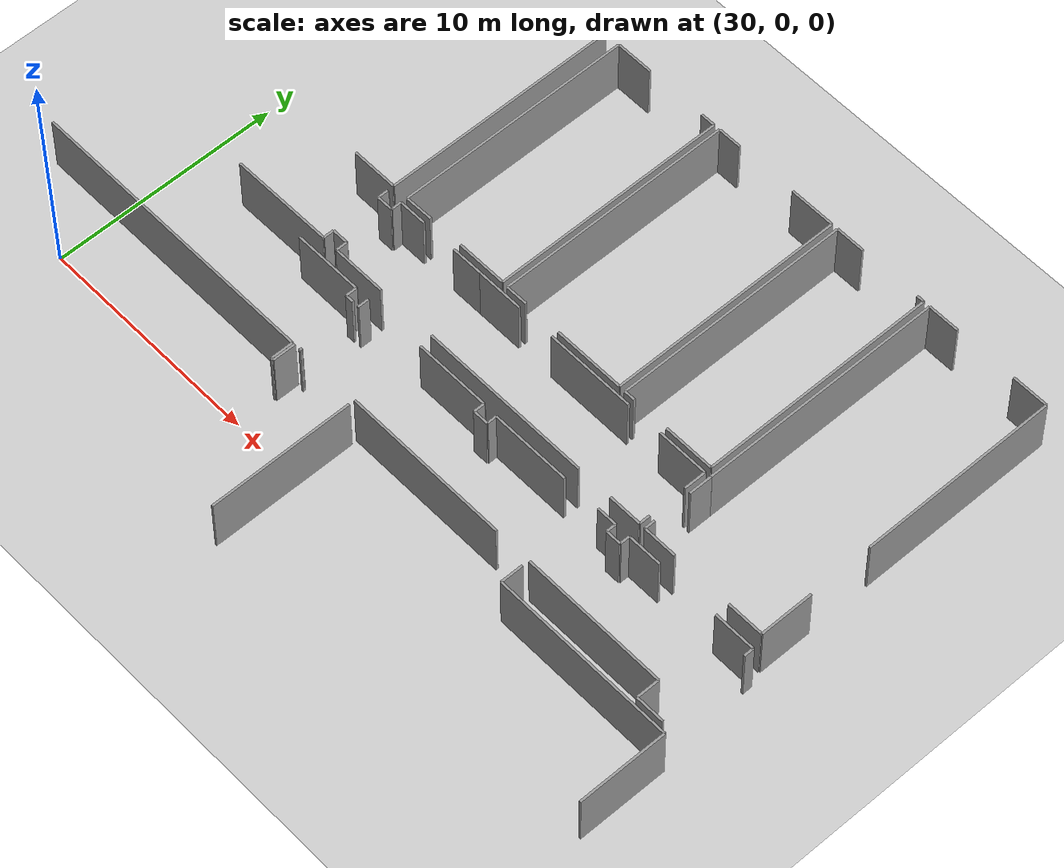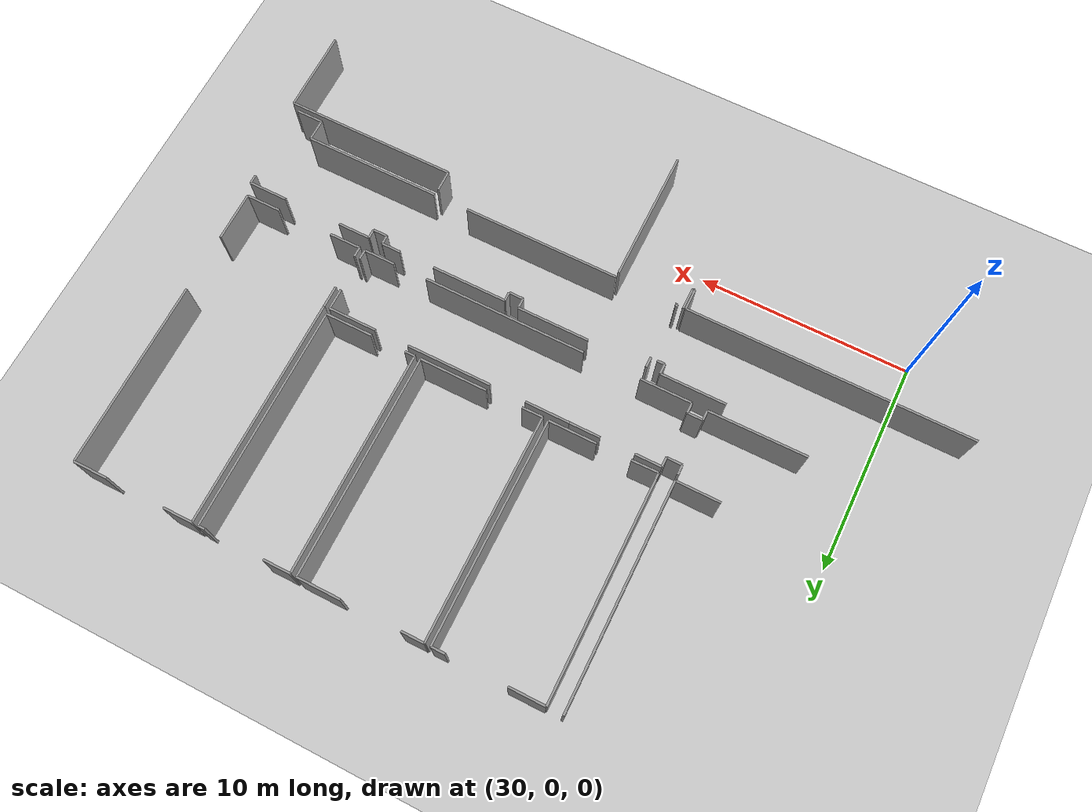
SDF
<sdf version="1.6">
 <world name="default">
  <model name="ground_plane">
   <static>1</static>
   <link name="link">
    <collision name="collision">
     <geometry><plane><normal>0 0 1</normal><size>100 100</size></plane></geometry>
     <surface><friction><ode><mu>100</mu><mu2>50</mu2></ode></friction></surface>
    </collision>
    <visual name="visual">
     <cast_shadows>0</cast_shadows>
     <geometry><plane><normal>0 0 1</normal><size>100 100</size></plane></geometry>
     <material>
      <script><uri>file://media/materials/scripts/gazebo.material</uri><name>Gazebo/Grey</name></script>
     </material>
    </visual>
   </link>
  </model>
  <model name="0510032192_A_40_1_203">
   <static>1</static>
   <link name="Wall_375">
    <collision name="Wall_375_Collision">
     <geometry><box><size>6.33245852053 0.1 2.5</size></box></geometry>
     <pose>3.16622926026 0 1.25 0 0 0</pose>
    </collision>
    <visual name="Wall_375_Visual">
     <pose>3.16622926026 0 1.25 0 0 0</pose>
     <geometry><box><size>6.33245852053 0.1 2.5</size></box></geometry>
     <material>
      <script><uri>file://media/materials/scripts/gazebo.material</uri><name>Gazebo/Grey</name></script>
      <ambient>1 1 1 1</ambient>
     </material>
    </visual>
    <pose>107.881576188 -20.9314150997 0 0 0 -1.57079632679</pose>
   </link>
   <link name="Wall_382">
    <collision name="Wall_382_Collision">
     <geometry><box><size>0.984704544155 0.1 2.5</size></box></geometry>
     <pose>0.492352272077 0 1.25 0 0 0</pose>
    </collision>
    <visual name="Wall_382_Visual">
     <pose>0.492352272077 0 1.25 0 0 0</pose>
     <geometry><box><size>0.984704544155 0.1 2.5</size></box></geometry>
     <material>
      <script><uri>file://media/materials/scripts/gazebo.material</uri><name>Gazebo/Grey</name></script>
      <ambient>1 1 1 1</ambient>
     </material>
    </visual>
    <pose>116.970521138 -20.9767867469 0 0 0 -1.57079632679</pose>
   </link>
   <link name="Wall_383">
    <collision name="Wall_383_Collision">
     <geometry><box><size>8.1643546614 0.1 2.5</size></box></geometry>
     <pose>4.0821773307 0 1.25 0 0 0</pose>
    </collision>
    <visual name="Wall_383_Visual">
     <pose>4.0821773307 0 1.25 0 0 0</pose>
     <geometry><box><size>8.1643546614 0.1 2.5</size></box></geometry>
     <material>
      <script><uri>file://media/materials/scripts/gazebo.material</uri><name>Gazebo/Grey</name></script>
      <ambient>1 1 1 1</ambient>
     </material>
    </visual>
    <pose>116.970521138 -21.9614912911 0 0 0 0.0</pose>
   </link>
   <link name="Wall_384">
    <collision name="Wall_384_Collision">
     <geometry><box><size>3.89039633468 0.1 2.5</size></box></geometry>
     <pose>1.94519816734 0 1.25 0 0 0</pose>
    </collision>
    <visual name="Wall_384_Visual">
     <pose>1.94519816734 0 1.25 0 0 0</pose>
     <geometry><box><size>3.89039633468 0.1 2.5</size></box></geometry>
     <material>
      <script><uri>file://media/materials/scripts/gazebo.material</uri><name>Gazebo/Grey</name></script>
      <ambient>1 1 1 1</ambient>
     </material>
    </visual>
    <pose>125.1348758 -21.9614912911 0 0 0 -1.57079632679</pose>
   </link>
   <link name="Wall_435">
    <collision name="Wall_435_Collision">
     <geometry><box><size>3.09556641481 0.1 2.5</size></box></geometry>
     <pose>1.54778320741 0 1.25 0 0 0</pose>
    </collision>
    <visual name="Wall_435_Visual">
     <pose>1.54778320741 0 1.25 0 0 0</pose>
     <geometry><box><size>3.09556641481 0.1 2.5</size></box></geometry>
     <material>
      <script><uri>file://media/materials/scripts/gazebo.material</uri><name>Gazebo/Grey</name></script>
      <ambient>1 1 1 1</ambient>
     </material>
    </visual>
    <pose>101.174579168 -17.423436934 0 0 0 0.0</pose>
   </link>
   <link name="Wall_436">
    <collision name="Wall_436_Collision">
     <geometry><box><size>0.480532767353 0.1 2.5</size></box></geometry>
     <pose>0.240266383676 0 1.25 0 0 0</pose>
    </collision>
    <visual name="Wall_436_Visual">
     <pose>0.240266383676 0 1.25 0 0 0</pose>
     <geometry><box><size>0.480532767353 0.1 2.5</size></box></geometry>
     <material>
      <script><uri>file://media/materials/scripts/gazebo.material</uri><name>Gazebo/Grey</name></script>
      <ambient>1 1 1 1</ambient>
     </material>
    </visual>
    <pose>104.270145583 -17.423436934 0 0 0 -1.57079632679</pose>
   </link>
   <link name="Wall_437">
    <collision name="Wall_437_Collision">
     <geometry><box><size>0.363608634593 0.1 2.5</size></box></geometry>
     <pose>0.181804317297 0 1.25 0 0 0</pose>
    </collision>
    <visual name="Wall_437_Visual">
     <pose>0.181804317297 0 1.25 0 0 0</pose>
     <geometry><box><size>0.363608634593 0.1 2.5</size></box></geometry>
     <material>
      <script><uri>file://media/materials/scripts/gazebo.material</uri><name>Gazebo/Grey</name></script>
      <ambient>1 1 1 1</ambient>
     </material>
    </visual>
    <pose>104.270145583 -17.9039697014 0 0 0 0.0</pose>
   </link>
   <link name="Wall_438">
    <collision name="Wall_438_Collision">
     <geometry><box><size>1.02524671627 0.1 2.5</size></box></geometry>
     <pose>0.512623358137 0 1.25 0 0 0</pose>
    </collision>
    <visual name="Wall_438_Visual">
     <pose>0.512623358137 0 1.25 0 0 0</pose>
     <geometry><box><size>1.02524671627 0.1 2.5</size></box></geometry>
     <material>
      <script><uri>file://media/materials/scripts/gazebo.material</uri><name>Gazebo/Grey</name></script>
      <ambient>1 1 1 1</ambient>
     </material>
    </visual>
    <pose>104.633754218 -20.6476198949 0 0 0 -1.57079632679</pose>
   </link>
   <link name="Wall_439">
    <collision name="Wall_439_Collision">
     <geometry><box><size>0.102689890511 0.1 2.5</size></box></geometry>
     <pose>0.0513449452554 0 1.25 0 0 0</pose>
    </collision>
    <visual name="Wall_439_Visual">
     <pose>0.0513449452554 0 1.25 0 0 0</pose>
     <geometry><box><size>0.102689890511 0.1 2.5</size></box></geometry>
     <material>
      <script><uri>file://media/materials/scripts/gazebo.material</uri><name>Gazebo/Grey</name></script>
      <ambient>1 1 1 1</ambient>
     </material>
    </visual>
    <pose>104.633754218 -21.6728666112 0 0 0 3.14159265359</pose>
   </link>
   <link name="Wall_440">
    <collision name="Wall_440_Collision">
     <geometry><box><size>0.999447152198 0.1 2.5</size></box></geometry>
     <pose>0.499723576099 0 1.25 0 0 0</pose>
    </collision>
    <visual name="Wall_440_Visual">
     <pose>0.499723576099 0 1.25 0 0 0</pose>
     <geometry><box><size>0.999447152198 0.1 2.5</size></box></geometry>
     <material>
      <script><uri>file://media/materials/scripts/gazebo.material</uri><name>Gazebo/Grey</name></script>
      <ambient>1 1 1 1</ambient>
     </material>
    </visual>
    <pose>104.531064327 -21.6728666112 0 0 0 1.57079632679</pose>
   </link>
   <link name="Wall_441">
    <collision name="Wall_441_Collision">
     <geometry><box><size>13.4601282353 0.1 2.5</size></box></geometry>
     <pose>6.73006411764 0 1.25 0 0 0</pose>
    </collision>
    <visual name="Wall_441_Visual">
     <pose>6.73006411764 0 1.25 0 0 0</pose>
     <geometry><box><size>13.4601282353 0.1 2.5</size></box></geometry>
     <material>
      <script><uri>file://media/materials/scripts/gazebo.material</uri><name>Gazebo/Grey</name></script>
      <ambient>1 1 1 1</ambient>
     </material>
    </visual>
    <pose>104.531064327 -20.673419459 0 0 0 3.14159265359</pose>
   </link>
   <link name="Wall_444">
    <collision name="Wall_444_Collision">
     <geometry><box><size>0.110569560327 0.1 2.5</size></box></geometry>
     <pose>0.0552847801636 0 1.25 0 0 0</pose>
    </collision>
    <visual name="Wall_444_Visual">
     <pose>0.0552847801636 0 1.25 0 0 0</pose>
     <geometry><box><size>0.110569560327 0.1 2.5</size></box></geometry>
     <material>
      <script><uri>file://media/materials/scripts/gazebo.material</uri><name>Gazebo/Grey</name></script>
      <ambient>1 1 1 1</ambient>
     </material>
    </visual>
    <pose>104.933308762 -20.6882891585 0 0 0 1.57079632679</pose>
   </link>
   <link name="Wall_445">
    <collision name="Wall_445_Collision">
     <geometry><box><size>0.504680142597 0.1 2.5</size></box></geometry>
     <pose>0.252340071298 0 1.25 0 0 0</pose>
    </collision>
    <visual name="Wall_445_Visual">
     <pose>0.252340071298 0 1.25 0 0 0</pose>
     <geometry><box><size>0.504680142597 0.1 2.5</size></box></geometry>
     <material>
      <script><uri>file://media/materials/scripts/gazebo.material</uri><name>Gazebo/Grey</name></script>
      <ambient>1 1 1 1</ambient>
     </material>
    </visual>
    <pose>104.933308762 -17.9249397904 0 0 0 1.57079632679</pose>
   </link>
   <link name="Wall_446">
    <collision name="Wall_446_Collision">
     <geometry><box><size>3.37694688213 0.1 2.5</size></box></geometry>
     <pose>1.68847344106 0 1.25 0 0 0</pose>
    </collision>
    <visual name="Wall_446_Visual">
     <pose>1.68847344106 0 1.25 0 0 0</pose>
     <geometry><box><size>3.37694688213 0.1 2.5</size></box></geometry>
     <material>
      <script><uri>file://media/materials/scripts/gazebo.material</uri><name>Gazebo/Grey</name></script>
      <ambient>1 1 1 1</ambient>
     </material>
    </visual>
    <pose>107.712036196 -17.4202596478 0 0 0 0.0</pose>
   </link>
   <link name="Wall_447">
    <collision name="Wall_447_Collision">
     <geometry><box><size>0.472017640293 0.1 2.5</size></box></geometry>
     <pose>0.236008820147 0 1.25 0 0 0</pose>
    </collision>
    <visual name="Wall_447_Visual">
     <pose>0.236008820147 0 1.25 0 0 0</pose>
     <geometry><box><size>0.472017640293 0.1 2.5</size></box></geometry>
     <material>
      <script><uri>file://media/materials/scripts/gazebo.material</uri><name>Gazebo/Grey</name></script>
      <ambient>1 1 1 1</ambient>
     </material>
    </visual>
    <pose>111.088983078 -17.4202596478 0 0 0 -1.57079632679</pose>
   </link>
   <link name="Wall_448">
    <collision name="Wall_448_Collision">
     <geometry><box><size>0.685149999682 0.1 2.5</size></box></geometry>
     <pose>0.342574999841 0 1.25 0 0 0</pose>
    </collision>
    <visual name="Wall_448_Visual">
     <pose>0.342574999841 0 1.25 0 0 0</pose>
     <geometry><box><size>0.685149999682 0.1 2.5</size></box></geometry>
     <material>
      <script><uri>file://media/materials/scripts/gazebo.material</uri><name>Gazebo/Grey</name></script>
      <ambient>1 1 1 1</ambient>
     </material>
    </visual>
    <pose>111.088983078 -17.8922772881 0 0 0 0.0</pose>
   </link>
   <link name="Wall_449">
    <collision name="Wall_449_Collision">
     <geometry><box><size>0.430967102379 0.1 2.5</size></box></geometry>
     <pose>0.215483551189 0 1.25 0 0 0</pose>
    </collision>
    <visual name="Wall_449_Visual">
     <pose>0.215483551189 0 1.25 0 0 0</pose>
     <geometry><box><size>0.430967102379 0.1 2.5</size></box></geometry>
     <material>
      <script><uri>file://media/materials/scripts/gazebo.material</uri><name>Gazebo/Grey</name></script>
      <ambient>1 1 1 1</ambient>
     </material>
    </visual>
    <pose>111.774133077 -17.8922772881 0 0 0 1.57079632679</pose>
   </link>
   <link name="Wall_450">
    <collision name="Wall_450_Collision">
     <geometry><box><size>3.54165739958 0.1 2.5</size></box></geometry>
     <pose>1.77082869979 0 1.25 0 0 0</pose>
    </collision>
    <visual name="Wall_450_Visual">
     <pose>1.77082869979 0 1.25 0 0 0</pose>
     <geometry><box><size>3.54165739958 0.1 2.5</size></box></geometry>
     <material>
      <script><uri>file://media/materials/scripts/gazebo.material</uri><name>Gazebo/Grey</name></script>
      <ambient>1 1 1 1</ambient>
     </material>
    </visual>
    <pose>111.774133077 -17.4613101857 0 0 0 0.0</pose>
   </link>
   <link name="Wall_451">
    <collision name="Wall_451_Collision">
     <geometry><box><size>0.897265627482 0.1 2.5</size></box></geometry>
     <pose>0.448632813741 0 1.25 0 0 0</pose>
    </collision>
    <visual name="Wall_451_Visual">
     <pose>0.448632813741 0 1.25 0 0 0</pose>
     <geometry><box><size>0.897265627482 0.1 2.5</size></box></geometry>
     <material>
      <script><uri>file://media/materials/scripts/gazebo.material</uri><name>Gazebo/Grey</name></script>
      <ambient>1 1 1 1</ambient>
     </material>
    </visual>
    <pose>117.015003146 -17.4613101857 0 0 0 0.0</pose>
   </link>
   <link name="Wall_452">
    <collision name="Wall_452_Collision">
     <geometry><box><size>0.423341615459 0.1 2.5</size></box></geometry>
     <pose>0.21167080773 0 1.25 0 0 0</pose>
    </collision>
    <visual name="Wall_452_Visual">
     <pose>0.21167080773 0 1.25 0 0 0</pose>
     <geometry><box><size>0.423341615459 0.1 2.5</size></box></geometry>
     <material>
      <script><uri>file://media/materials/scripts/gazebo.material</uri><name>Gazebo/Grey</name></script>
      <ambient>1 1 1 1</ambient>
     </material>
    </visual>
    <pose>117.912268773 -17.4613101857 0 0 0 -1.57079632679</pose>
   </link>
   <link name="Wall_453">
    <collision name="Wall_453_Collision">
     <geometry><box><size>0.681210164774 0.1 2.5</size></box></geometry>
     <pose>0.340605082387 0 1.25 0 0 0</pose>
    </collision>
    <visual name="Wall_453_Visual">
     <pose>0.340605082387 0 1.25 0 0 0</pose>
     <geometry><box><size>0.681210164774 0.1 2.5</size></box></geometry>
     <material>
      <script><uri>file://media/materials/scripts/gazebo.material</uri><name>Gazebo/Grey</name></script>
      <ambient>1 1 1 1</ambient>
     </material>
    </visual>
    <pose>117.912268773 -17.8846518012 0 0 0 0.0</pose>
   </link>
   <link name="Wall_454">
    <collision name="Wall_454_Collision">
     <geometry><box><size>0.434144388595 0.1 2.5</size></box></geometry>
     <pose>0.217072194297 0 1.25 0 0 0</pose>
    </collision>
    <visual name="Wall_454_Visual">
     <pose>0.217072194297 0 1.25 0 0 0</pose>
     <geometry><box><size>0.434144388595 0.1 2.5</size></box></geometry>
     <material>
      <script><uri>file://media/materials/scripts/gazebo.material</uri><name>Gazebo/Grey</name></script>
      <ambient>1 1 1 1</ambient>
     </material>
    </visual>
    <pose>118.593478938 -17.8846518012 0 0 0 1.57079632679</pose>
   </link>
   <link name="Wall_455">
    <collision name="Wall_455_Collision">
     <geometry><box><size>1.52509738382 0.1 2.5</size></box></geometry>
     <pose>0.762548691911 0 1.25 0 0 0</pose>
    </collision>
    <visual name="Wall_455_Visual">
     <pose>0.762548691911 0 1.25 0 0 0</pose>
     <geometry><box><size>1.52509738382 0.1 2.5</size></box></geometry>
     <material>
      <script><uri>file://media/materials/scripts/gazebo.material</uri><name>Gazebo/Grey</name></script>
      <ambient>1 1 1 1</ambient>
     </material>
    </visual>
    <pose>118.593478938 -17.4505074126 0 0 0 0.0</pose>
   </link>
   <link name="Wall_456">
    <collision name="Wall_456_Collision">
     <geometry><box><size>1.85172240686 0.1 2.5</size></box></geometry>
     <pose>0.925861203429 0 1.25 0 0 0</pose>
    </collision>
    <visual name="Wall_456_Visual">
     <pose>0.925861203429 0 1.25 0 0 0</pose>
     <geometry><box><size>1.85172240686 0.1 2.5</size></box></geometry>
     <material>
      <script><uri>file://media/materials/scripts/gazebo.material</uri><name>Gazebo/Grey</name></script>
      <ambient>1 1 1 1</ambient>
     </material>
    </visual>
    <pose>122.896795389 -17.4505074126 0 0 0 0.0</pose>
   </link>
   <link name="Wall_457">
    <collision name="Wall_457_Collision">
     <geometry><box><size>0.426391810227 0.1 2.5</size></box></geometry>
     <pose>0.213195905114 0 1.25 0 0 0</pose>
    </collision>
    <visual name="Wall_457_Visual">
     <pose>0.213195905114 0 1.25 0 0 0</pose>
     <geometry><box><size>0.426391810227 0.1 2.5</size></box></geometry>
     <material>
      <script><uri>file://media/materials/scripts/gazebo.material</uri><name>Gazebo/Grey</name></script>
      <ambient>1 1 1 1</ambient>
     </material>
    </visual>
    <pose>124.748517796 -17.4505074126 0 0 0 -1.57079632679</pose>
   </link>
   <link name="Wall_458">
    <collision name="Wall_458_Collision">
     <geometry><box><size>1.27091448652 0.1 2.5</size></box></geometry>
     <pose>0.635457243259 0 1.25 0 0 0</pose>
    </collision>
    <visual name="Wall_458_Visual">
     <pose>0.635457243259 0 1.25 0 0 0</pose>
     <geometry><box><size>1.27091448652 0.1 2.5</size></box></geometry>
     <material>
      <script><uri>file://media/materials/scripts/gazebo.material</uri><name>Gazebo/Grey</name></script>
      <ambient>1 1 1 1</ambient>
     </material>
    </visual>
    <pose>124.748517796 -21.6812546468 0 0 0 3.14159265359</pose>
   </link>
   <link name="Wall_459">
    <collision name="Wall_459_Collision">
     <geometry><box><size>1.00402244435 0.1 2.5</size></box></geometry>
     <pose>0.502011222175 0 1.25 0 0 0</pose>
    </collision>
    <visual name="Wall_459_Visual">
     <pose>0.502011222175 0 1.25 0 0 0</pose>
     <geometry><box><size>1.00402244435 0.1 2.5</size></box></geometry>
     <material>
      <script><uri>file://media/materials/scripts/gazebo.material</uri><name>Gazebo/Grey</name></script>
      <ambient>1 1 1 1</ambient>
     </material>
    </visual>
    <pose>123.477603309 -21.6812546468 0 0 0 1.57079632679</pose>
   </link>
   <link name="Wall_460">
    <collision name="Wall_460_Collision">
     <geometry><box><size>6.46895473638 0.1 2.5</size></box></geometry>
     <pose>3.23447736819 0 1.25 0 0 0</pose>
    </collision>
    <visual name="Wall_460_Visual">
     <pose>3.23447736819 0 1.25 0 0 0</pose>
     <geometry><box><size>6.46895473638 0.1 2.5</size></box></geometry>
     <material>
      <script><uri>file://media/materials/scripts/gazebo.material</uri><name>Gazebo/Grey</name></script>
      <ambient>1 1 1 1</ambient>
     </material>
    </visual>
    <pose>123.477603309 -20.6772322024 0 0 0 3.14159265359</pose>
   </link>
   <link name="Wall_461">
    <collision name="Wall_461_Collision">
     <geometry><box><size>7.42709716777 0.1 2.5</size></box></geometry>
     <pose>3.71354858388 0 1.25 0 0 0</pose>
    </collision>
    <visual name="Wall_461_Visual">
     <pose>3.71354858388 0 1.25 0 0 0</pose>
     <geometry><box><size>7.42709716777 0.1 2.5</size></box></geometry>
     <material>
      <script><uri>file://media/materials/scripts/gazebo.material</uri><name>Gazebo/Grey</name></script>
      <ambient>1 1 1 1</ambient>
     </material>
    </visual>
    <pose>115.322145049 -20.6772322024 0 0 0 3.14159265359</pose>
   </link>
   <link name="Wall_462">
    <collision name="Wall_462_Collision">
     <geometry><box><size>0.0916667722776 0.1 2.5</size></box></geometry>
     <pose>0.0458333861388 0 1.25 0 0 0</pose>
    </collision>
    <visual name="Wall_462_Visual">
     <pose>0.0458333861388 0 1.25 0 0 0</pose>
     <geometry><box><size>0.0916667722776 0.1 2.5</size></box></geometry>
     <material>
      <script><uri>file://media/materials/scripts/gazebo.material</uri><name>Gazebo/Grey</name></script>
      <ambient>1 1 1 1</ambient>
     </material>
    </visual>
    <pose>105.02430624 -20.6772322024 0 0 0 -3.02067702639</pose>
   </link>
   <link name="Wall_467">
    <collision name="Wall_467_Collision">
     <geometry><box><size>0.471128000153 0.1 2.5</size></box></geometry>
     <pose>0.235564000076 0 1.25 0 0 0</pose>
    </collision>
    <visual name="Wall_467_Visual">
     <pose>0.235564000076 0 1.25 0 0 0</pose>
     <geometry><box><size>0.471128000153 0.1 2.5</size></box></geometry>
     <material>
      <script><uri>file://media/materials/scripts/gazebo.material</uri><name>Gazebo/Grey</name></script>
      <ambient>1 1 1 1</ambient>
     </material>
    </visual>
    <pose>101.758818558 -13.6817375943 0 0 0 -1.57079632679</pose>
   </link>
   <link name="Wall_468">
    <collision name="Wall_468_Collision">
     <geometry><box><size>0.727090177737 0.1 2.5</size></box></geometry>
     <pose>0.363545088869 0 1.25 0 0 0</pose>
    </collision>
    <visual name="Wall_468_Visual">
     <pose>0.363545088869 0 1.25 0 0 0</pose>
     <geometry><box><size>0.727090177737 0.1 2.5</size></box></geometry>
     <material>
      <script><uri>file://media/materials/scripts/gazebo.material</uri><name>Gazebo/Grey</name></script>
      <ambient>1 1 1 1</ambient>
     </material>
    </visual>
    <pose>101.758818558 -14.1528655944 0 0 0 0.0</pose>
   </link>
   <link name="Wall_469">
    <collision name="Wall_469_Collision">
     <geometry><box><size>0.460579409914 0.1 2.5</size></box></geometry>
     <pose>0.230289704957 0 1.25 0 0 0</pose>
    </collision>
    <visual name="Wall_469_Visual">
     <pose>0.230289704957 0 1.25 0 0 0</pose>
     <geometry><box><size>0.460579409914 0.1 2.5</size></box></geometry>
     <material>
      <script><uri>file://media/materials/scripts/gazebo.material</uri><name>Gazebo/Grey</name></script>
      <ambient>1 1 1 1</ambient>
     </material>
    </visual>
    <pose>102.485908736 -14.1528655944 0 0 0 1.57079632679</pose>
   </link>
   <link name="Wall_470">
    <collision name="Wall_470_Collision">
     <geometry><box><size>1.24651292838 0.1 2.5</size></box></geometry>
     <pose>0.623256464189 0 1.25 0 0 0</pose>
    </collision>
    <visual name="Wall_470_Visual">
     <pose>0.623256464189 0 1.25 0 0 0</pose>
     <geometry><box><size>1.24651292838 0.1 2.5</size></box></geometry>
     <material>
      <script><uri>file://media/materials/scripts/gazebo.material</uri><name>Gazebo/Grey</name></script>
      <ambient>1 1 1 1</ambient>
     </material>
    </visual>
    <pose>102.485908736 -13.6922861845 0 0 0 0.0</pose>
   </link>
   <link name="Wall_471">
    <collision name="Wall_471_Collision">
     <geometry><box><size>1.43676882701 0.1 2.5</size></box></geometry>
     <pose>0.718384413505 0 1.25 0 0 0</pose>
    </collision>
    <visual name="Wall_471_Visual">
     <pose>0.718384413505 0 1.25 0 0 0</pose>
     <geometry><box><size>1.43676882701 0.1 2.5</size></box></geometry>
     <material>
      <script><uri>file://media/materials/scripts/gazebo.material</uri><name>Gazebo/Grey</name></script>
      <ambient>1 1 1 1</ambient>
     </material>
    </visual>
    <pose>105.342161953 -13.6922861845 0 0 0 0.0</pose>
   </link>
   <link name="Wall_472">
    <collision name="Wall_472_Collision">
     <geometry><box><size>2.07667427097 0.1 2.5</size></box></geometry>
     <pose>1.03833713549 0 1.25 0 0 0</pose>
    </collision>
    <visual name="Wall_472_Visual">
     <pose>1.03833713549 0 1.25 0 0 0</pose>
     <geometry><box><size>2.07667427097 0.1 2.5</size></box></geometry>
     <material>
      <script><uri>file://media/materials/scripts/gazebo.material</uri><name>Gazebo/Grey</name></script>
      <ambient>1 1 1 1</ambient>
     </material>
    </visual>
    <pose>106.77893078 -13.6922861845 0 0 0 0.0</pose>
   </link>
   <link name="Wall_473">
    <collision name="Wall_473_Collision">
     <geometry><box><size>3.99372168244 0.1 2.5</size></box></geometry>
     <pose>1.99686084122 0 1.25 0 0 0</pose>
    </collision>
    <visual name="Wall_473_Visual">
     <pose>1.99686084122 0 1.25 0 0 0</pose>
     <geometry><box><size>3.99372168244 0.1 2.5</size></box></geometry>
     <material>
      <script><uri>file://media/materials/scripts/gazebo.material</uri><name>Gazebo/Grey</name></script>
      <ambient>1 1 1 1</ambient>
     </material>
    </visual>
    <pose>110.558249188 -13.6922861845 0 0 0 0.0</pose>
   </link>
   <link name="Wall_474">
    <collision name="Wall_474_Collision">
     <geometry><box><size>2.27493693087 0.1 2.5</size></box></geometry>
     <pose>1.13746846543 0 1.25 0 0 0</pose>
    </collision>
    <visual name="Wall_474_Visual">
     <pose>1.13746846543 0 1.25 0 0 0</pose>
     <geometry><box><size>2.27493693087 0.1 2.5</size></box></geometry>
     <material>
      <script><uri>file://media/materials/scripts/gazebo.material</uri><name>Gazebo/Grey</name></script>
      <ambient>1 1 1 1</ambient>
     </material>
    </visual>
    <pose>116.169845012 -13.6922861845 0 0 0 0.0</pose>
   </link>
   <link name="Wall_475">
    <collision name="Wall_475_Collision">
     <geometry><box><size>0.984450361257 0.1 2.5</size></box></geometry>
     <pose>0.492225180629 0 1.25 0 0 0</pose>
    </collision>
    <visual name="Wall_475_Visual">
     <pose>0.492225180629 0 1.25 0 0 0</pose>
     <geometry><box><size>0.984450361257 0.1 2.5</size></box></geometry>
     <material>
      <script><uri>file://media/materials/scripts/gazebo.material</uri><name>Gazebo/Grey</name></script>
      <ambient>1 1 1 1</ambient>
     </material>
    </visual>
    <pose>118.444781943 -13.6922861845 0 0 0 -1.57079632679</pose>
   </link>
   <link name="Wall_476">
    <collision name="Wall_476_Collision">
     <geometry><box><size>0.476338749547 0.1 2.5</size></box></geometry>
     <pose>0.238169374774 0 1.25 0 0 0</pose>
    </collision>
    <visual name="Wall_476_Visual">
     <pose>0.238169374774 0 1.25 0 0 0</pose>
     <geometry><box><size>0.476338749547 0.1 2.5</size></box></geometry>
     <material>
      <script><uri>file://media/materials/scripts/gazebo.material</uri><name>Gazebo/Grey</name></script>
      <ambient>1 1 1 1</ambient>
     </material>
    </visual>
    <pose>118.444781943 -16.3505309245 0 0 0 -1.57079632679</pose>
   </link>
   <link name="Wall_477">
    <collision name="Wall_477_Collision">
     <geometry><box><size>1.47680263333 0.1 2.5</size></box></geometry>
     <pose>0.738401316667 0 1.25 0 0 0</pose>
    </collision>
    <visual name="Wall_477_Visual">
     <pose>0.738401316667 0 1.25 0 0 0</pose>
     <geometry><box><size>1.47680263333 0.1 2.5</size></box></geometry>
     <material>
      <script><uri>file://media/materials/scripts/gazebo.material</uri><name>Gazebo/Grey</name></script>
      <ambient>1 1 1 1</ambient>
     </material>
    </visual>
    <pose>118.444781943 -16.8268696741 0 0 0 3.14159265359</pose>
   </link>
   <link name="Wall_478">
    <collision name="Wall_478_Collision">
     <geometry><box><size>7.71699276214 0.1 2.5</size></box></geometry>
     <pose>3.85849638107 0 1.25 0 0 0</pose>
    </collision>
    <visual name="Wall_478_Visual">
     <pose>3.85849638107 0 1.25 0 0 0</pose>
     <geometry><box><size>7.71699276214 0.1 2.5</size></box></geometry>
     <material>
      <script><uri>file://media/materials/scripts/gazebo.material</uri><name>Gazebo/Grey</name></script>
      <ambient>1 1 1 1</ambient>
     </material>
    </visual>
    <pose>115.346292425 -16.8268696741 0 0 0 3.14159265359</pose>
   </link>
   <link name="Wall_479">
    <collision name="Wall_479_Collision">
     <geometry><box><size>2.42032954813 0.1 2.5</size></box></geometry>
     <pose>1.21016477406 0 1.25 0 0 0</pose>
    </collision>
    <visual name="Wall_479_Visual">
     <pose>1.21016477406 0 1.25 0 0 0</pose>
     <geometry><box><size>2.42032954813 0.1 2.5</size></box></geometry>
     <material>
      <script><uri>file://media/materials/scripts/gazebo.material</uri><name>Gazebo/Grey</name></script>
      <ambient>1 1 1 1</ambient>
     </material>
    </visual>
    <pose>104.933308762 -16.8268696741 0 0 0 3.14159265359</pose>
   </link>
   <link name="Wall_480">
    <collision name="Wall_480_Collision">
     <geometry><box><size>0.492860637872 0.1 2.5</size></box></geometry>
     <pose>0.246430318936 0 1.25 0 0 0</pose>
    </collision>
    <visual name="Wall_480_Visual">
     <pose>0.246430318936 0 1.25 0 0 0</pose>
     <geometry><box><size>0.492860637872 0.1 2.5</size></box></geometry>
     <material>
      <script><uri>file://media/materials/scripts/gazebo.material</uri><name>Gazebo/Grey</name></script>
      <ambient>1 1 1 1</ambient>
     </material>
    </visual>
    <pose>102.512979214 -16.8268696741 0 0 0 1.57079632679</pose>
   </link>
   <link name="Wall_481">
    <collision name="Wall_481_Collision">
     <geometry><box><size>0.729377823813 0.1 2.5</size></box></geometry>
     <pose>0.364688911907 0 1.25 0 0 0</pose>
    </collision>
    <visual name="Wall_481_Visual">
     <pose>0.364688911907 0 1.25 0 0 0</pose>
     <geometry><box><size>0.729377823813 0.1 2.5</size></box></geometry>
     <material>
      <script><uri>file://media/materials/scripts/gazebo.material</uri><name>Gazebo/Grey</name></script>
      <ambient>1 1 1 1</ambient>
     </material>
    </visual>
    <pose>102.512979214 -16.3340090362 0 0 0 3.14159265359</pose>
   </link>
   <link name="Wall_482">
    <collision name="Wall_482_Collision">
     <geometry><box><size>0.471763457396 0.1 2.5</size></box></geometry>
     <pose>0.235881728698 0 1.25 0 0 0</pose>
    </collision>
    <visual name="Wall_482_Visual">
     <pose>0.235881728698 0 1.25 0 0 0</pose>
     <geometry><box><size>0.471763457396 0.1 2.5</size></box></geometry>
     <material>
      <script><uri>file://media/materials/scripts/gazebo.material</uri><name>Gazebo/Grey</name></script>
      <ambient>1 1 1 1</ambient>
     </material>
    </visual>
    <pose>101.78360139 -16.3340090362 0 0 0 -1.57079632679</pose>
   </link>
   <link name="Wall_483">
    <collision name="Wall_483_Collision">
     <geometry><box><size>4.5946036201 0.1 2.5</size></box></geometry>
     <pose>2.29730181005 0 1.25 0 0 0</pose>
    </collision>
    <visual name="Wall_483_Visual">
     <pose>2.29730181005 0 1.25 0 0 0</pose>
     <geometry><box><size>4.5946036201 0.1 2.5</size></box></geometry>
     <material>
      <script><uri>file://media/materials/scripts/gazebo.material</uri><name>Gazebo/Grey</name></script>
      <ambient>1 1 1 1</ambient>
     </material>
    </visual>
    <pose>101.78360139 -16.8057724936 0 0 0 -3.13434540143</pose>
   </link>
   <link name="Wall_495">
    <collision name="Wall_495_Collision">
     <geometry><box><size>10.5383847948 0.1 2.5</size></box></geometry>
     <pose>5.26919239739 0 1.25 0 0 0</pose>
    </collision>
    <visual name="Wall_495_Visual">
     <pose>5.26919239739 0 1.25 0 0 0</pose>
     <geometry><box><size>10.5383847948 0.1 2.5</size></box></geometry>
     <material>
      <script><uri>file://media/materials/scripts/gazebo.material</uri><name>Gazebo/Grey</name></script>
      <ambient>1 1 1 1</ambient>
     </material>
    </visual>
    <pose>101.750557614 -2.86324324668 0 0 0 -1.57079632679</pose>
   </link>
   <link name="Wall_496">
    <collision name="Wall_496_Collision">
     <geometry><box><size>2.08455394079 0.1 2.5</size></box></geometry>
     <pose>1.04227697039 0 1.25 0 0 0</pose>
    </collision>
    <visual name="Wall_496_Visual">
     <pose>1.04227697039 0 1.25 0 0 0</pose>
     <geometry><box><size>2.08455394079 0.1 2.5</size></box></geometry>
     <material>
      <script><uri>file://media/materials/scripts/gazebo.material</uri><name>Gazebo/Grey</name></script>
      <ambient>1 1 1 1</ambient>
     </material>
    </visual>
    <pose>101.750557614 -13.4016280415 0 0 0 3.14159265359</pose>
   </link>
   <link name="Wall_498">
    <collision name="Wall_498_Collision">
     <geometry><box><size>10.5366309328 0.1 2.5</size></box></geometry>
     <pose>5.26831546639 0 1.25 0 0 0</pose>
    </collision>
    <visual name="Wall_498_Visual">
     <pose>5.26831546639 0 1.25 0 0 0</pose>
     <geometry><box><size>10.5366309328 0.1 2.5</size></box></geometry>
     <material>
      <script><uri>file://media/materials/scripts/gazebo.material</uri><name>Gazebo/Grey</name></script>
      <ambient>1 1 1 1</ambient>
     </material>
    </visual>
    <pose>107.894666607 -13.4082367968 0 0 0 1.57079632679</pose>
   </link>
   <link name="Wall_499">
    <collision name="Wall_499_Collision">
     <geometry><box><size>1.06744107723 0.1 2.5</size></box></geometry>
     <pose>0.533720538614 0 1.25 0 0 0</pose>
    </collision>
    <visual name="Wall_499_Visual">
     <pose>0.533720538614 0 1.25 0 0 0</pose>
     <geometry><box><size>1.06744107723 0.1 2.5</size></box></geometry>
     <material>
      <script><uri>file://media/materials/scripts/gazebo.material</uri><name>Gazebo/Grey</name></script>
      <ambient>1 1 1 1</ambient>
     </material>
    </visual>
    <pose>107.894666607 -2.871605864 0 0 0 0.0</pose>
   </link>
   <link name="Wall_500">
    <collision name="Wall_500_Collision">
     <geometry><box><size>2.03308190408 0.1 2.5</size></box></geometry>
     <pose>1.01654095204 0 1.25 0 0 0</pose>
    </collision>
    <visual name="Wall_500_Visual">
     <pose>1.01654095204 0 1.25 0 0 0</pose>
     <geometry><box><size>2.03308190408 0.1 2.5</size></box></geometry>
     <material>
      <script><uri>file://media/materials/scripts/gazebo.material</uri><name>Gazebo/Grey</name></script>
      <ambient>1 1 1 1</ambient>
     </material>
    </visual>
    <pose>111.734734728 -2.871605864 0 0 0 0.0</pose>
   </link>
   <link name="Wall_501">
    <collision name="Wall_501_Collision">
     <geometry><box><size>10.5270990741 0.1 2.5</size></box></geometry>
     <pose>5.26354953707 0 1.25 0 0 0</pose>
    </collision>
    <visual name="Wall_501_Visual">
     <pose>5.26354953707 0 1.25 0 0 0</pose>
     <geometry><box><size>10.5270990741 0.1 2.5</size></box></geometry>
     <material>
      <script><uri>file://media/materials/scripts/gazebo.material</uri><name>Gazebo/Grey</name></script>
      <ambient>1 1 1 1</ambient>
     </material>
    </visual>
    <pose>113.767816632 -2.871605864 0 0 0 -1.57079632679</pose>
   </link>
   <link name="Wall_502">
    <collision name="Wall_502_Collision">
     <geometry><box><size>3.19202882434 0.1 2.5</size></box></geometry>
     <pose>1.59601441217 0 1.25 0 0 0</pose>
    </collision>
    <visual name="Wall_502_Visual">
     <pose>1.59601441217 0 1.25 0 0 0</pose>
     <geometry><box><size>3.19202882434 0.1 2.5</size></box></geometry>
     <material>
      <script><uri>file://media/materials/scripts/gazebo.material</uri><name>Gazebo/Grey</name></script>
      <ambient>1 1 1 1</ambient>
     </material>
    </visual>
    <pose>113.767816632 -13.3987049381 0 0 0 3.14159265359</pose>
   </link>
   <link name="Wall_503">
    <collision name="Wall_503_Collision">
     <geometry><box><size>0.979667258321 0.1 2.5</size></box></geometry>
     <pose>0.48983362916 0 1.25 0 0 0</pose>
    </collision>
    <visual name="Wall_503_Visual">
     <pose>0.48983362916 0 1.25 0 0 0</pose>
     <geometry><box><size>0.979667258321 0.1 2.5</size></box></geometry>
     <material>
      <script><uri>file://media/materials/scripts/gazebo.material</uri><name>Gazebo/Grey</name></script>
      <ambient>1 1 1 1</ambient>
     </material>
    </visual>
    <pose>108.874287494 -13.3987049381 0 0 0 -3.13186281015</pose>
   </link>
   <link name="Wall_504">
    <collision name="Wall_504_Collision">
     <geometry><box><size>10.5334536466 0.1 2.5</size></box></geometry>
     <pose>5.26672682329 0 1.25 0 0 0</pose>
    </collision>
    <visual name="Wall_504_Visual">
     <pose>5.26672682329 0 1.25 0 0 0</pose>
     <geometry><box><size>10.5334536466 0.1 2.5</size></box></geometry>
     <material>
      <script><uri>file://media/materials/scripts/gazebo.material</uri><name>Gazebo/Grey</name></script>
      <ambient>1 1 1 1</ambient>
     </material>
    </visual>
    <pose>114.057585135 -13.4050595106 0 0 0 1.57079632679</pose>
   </link>
   <link name="Wall_505">
    <collision name="Wall_505_Collision">
     <geometry><box><size>1.28870728933 0.1 2.5</size></box></geometry>
     <pose>0.644353644665 0 1.25 0 0 0</pose>
    </collision>
    <visual name="Wall_505_Visual">
     <pose>0.644353644665 0 1.25 0 0 0</pose>
     <geometry><box><size>1.28870728933 0.1 2.5</size></box></geometry>
     <material>
      <script><uri>file://media/materials/scripts/gazebo.material</uri><name>Gazebo/Grey</name></script>
      <ambient>1 1 1 1</ambient>
     </material>
    </visual>
    <pose>114.057585135 -2.871605864 0 0 0 0.0</pose>
   </link>
   <link name="Wall_506">
    <collision name="Wall_506_Collision">
     <geometry><box><size>0.325354108549 0.1 2.5</size></box></geometry>
     <pose>0.162677054274 0 1.25 0 0 0</pose>
    </collision>
    <visual name="Wall_506_Visual">
     <pose>0.162677054274 0 1.25 0 0 0</pose>
     <geometry><box><size>0.325354108549 0.1 2.5</size></box></geometry>
     <material>
      <script><uri>file://media/materials/scripts/gazebo.material</uri><name>Gazebo/Grey</name></script>
      <ambient>1 1 1 1</ambient>
     </material>
    </visual>
    <pose>118.113073262 -2.871605864 0 0 0 0.0</pose>
   </link>
   <link name="Wall_507">
    <collision name="Wall_507_Collision">
     <geometry><box><size>10.5291325373 0.1 2.5</size></box></geometry>
     <pose>5.26456626866 0 1.25 0 0 0</pose>
    </collision>
    <visual name="Wall_507_Visual">
     <pose>5.26456626866 0 1.25 0 0 0</pose>
     <geometry><box><size>10.5291325373 0.1 2.5</size></box></geometry>
     <material>
      <script><uri>file://media/materials/scripts/gazebo.material</uri><name>Gazebo/Grey</name></script>
      <ambient>1 1 1 1</ambient>
     </material>
    </visual>
    <pose>118.43842737 -2.871605864 0 0 0 -1.57079632679</pose>
   </link>
   <link name="Wall_508">
    <collision name="Wall_508_Collision">
     <geometry><box><size>2.24824772665 0.1 2.5</size></box></geometry>
     <pose>1.12412386333 0 1.25 0 0 0</pose>
    </collision>
    <visual name="Wall_508_Visual">
     <pose>1.12412386333 0 1.25 0 0 0</pose>
     <geometry><box><size>2.24824772665 0.1 2.5</size></box></geometry>
     <material>
      <script><uri>file://media/materials/scripts/gazebo.material</uri><name>Gazebo/Grey</name></script>
      <ambient>1 1 1 1</ambient>
     </material>
    </visual>
    <pose>118.43842737 -13.4007384013 0 0 0 3.14159265359</pose>
   </link>
   <link name="Wall_509">
    <collision name="Wall_509_Collision">
     <geometry><box><size>0.479154246129 0.1 2.5</size></box></geometry>
     <pose>0.239577123065 0 1.25 0 0 0</pose>
    </collision>
    <visual name="Wall_509_Visual">
     <pose>0.239577123065 0 1.25 0 0 0</pose>
     <geometry><box><size>0.479154246129 0.1 2.5</size></box></geometry>
     <material>
      <script><uri>file://media/materials/scripts/gazebo.material</uri><name>Gazebo/Grey</name></script>
      <ambient>1 1 1 1</ambient>
     </material>
    </visual>
    <pose>114.536719897 -13.4007384013 0 0 0 -3.13257433045</pose>
   </link>
   <link name="Wall_510">
    <collision name="Wall_510_Collision">
     <geometry><box><size>1.02206943006 0.1 2.5</size></box></geometry>
     <pose>0.511034715029 0 1.25 0 0 0</pose>
    </collision>
    <visual name="Wall_510_Visual">
     <pose>0.511034715029 0 1.25 0 0 0</pose>
     <geometry><box><size>1.02206943006 0.1 2.5</size></box></geometry>
     <material>
      <script><uri>file://media/materials/scripts/gazebo.material</uri><name>Gazebo/Grey</name></script>
      <ambient>1 1 1 1</ambient>
     </material>
    </visual>
    <pose>118.714215814 -13.6596236822 0 0 0 -1.57079632679</pose>
   </link>
   <link name="Wall_511">
    <collision name="Wall_511_Collision">
     <geometry><box><size>0.475194926509 0.1 2.5</size></box></geometry>
     <pose>0.237597463255 0 1.25 0 0 0</pose>
    </collision>
    <visual name="Wall_511_Visual">
     <pose>0.237597463255 0 1.25 0 0 0</pose>
     <geometry><box><size>0.475194926509 0.1 2.5</size></box></geometry>
     <material>
      <script><uri>file://media/materials/scripts/gazebo.material</uri><name>Gazebo/Grey</name></script>
      <ambient>1 1 1 1</ambient>
     </material>
    </visual>
    <pose>118.714215814 -16.3561229483 0 0 0 -1.57079632679</pose>
   </link>
   <link name="Wall_512">
    <collision name="Wall_512_Collision">
     <geometry><box><size>1.50349183755 0.1 2.5</size></box></geometry>
     <pose>0.751745918776 0 1.25 0 0 0</pose>
    </collision>
    <visual name="Wall_512_Visual">
     <pose>0.751745918776 0 1.25 0 0 0</pose>
     <geometry><box><size>1.50349183755 0.1 2.5</size></box></geometry>
     <material>
      <script><uri>file://media/materials/scripts/gazebo.material</uri><name>Gazebo/Grey</name></script>
      <ambient>1 1 1 1</ambient>
     </material>
    </visual>
    <pose>118.714215814 -16.8313178748 0 0 0 0.0</pose>
   </link>
   <link name="Wall_513">
    <collision name="Wall_513_Collision">
     <geometry><box><size>1.63566694415 0.1 2.5</size></box></geometry>
     <pose>0.817833472075 0 1.25 0 0 0</pose>
    </collision>
    <visual name="Wall_513_Visual">
     <pose>0.817833472075 0 1.25 0 0 0</pose>
     <geometry><box><size>1.63566694415 0.1 2.5</size></box></geometry>
     <material>
      <script><uri>file://media/materials/scripts/gazebo.material</uri><name>Gazebo/Grey</name></script>
      <ambient>1 1 1 1</ambient>
     </material>
    </visual>
    <pose>122.891711731 -16.8313178748 0 0 0 0.0</pose>
   </link>
   <link name="Wall_514">
    <collision name="Wall_514_Collision">
     <geometry><box><size>2.35551290931 0.1 2.5</size></box></geometry>
     <pose>1.17775645466 0 1.25 0 0 0</pose>
    </collision>
    <visual name="Wall_514_Visual">
     <pose>1.17775645466 0 1.25 0 0 0</pose>
     <geometry><box><size>2.35551290931 0.1 2.5</size></box></geometry>
     <material>
      <script><uri>file://media/materials/scripts/gazebo.material</uri><name>Gazebo/Grey</name></script>
      <ambient>1 1 1 1</ambient>
     </material>
    </visual>
    <pose>124.527378675 -16.8313178748 0 0 0 1.57079632679</pose>
   </link>
   <link name="Wall_515">
    <collision name="Wall_515_Collision">
     <geometry><box><size>8.78773821703 0.1 2.5</size></box></geometry>
     <pose>4.39386910852 0 1.25 0 0 0</pose>
    </collision>
    <visual name="Wall_515_Visual">
     <pose>4.39386910852 0 1.25 0 0 0</pose>
     <geometry><box><size>8.78773821703 0.1 2.5</size></box></geometry>
     <material>
      <script><uri>file://media/materials/scripts/gazebo.material</uri><name>Gazebo/Grey</name></script>
      <ambient>1 1 1 1</ambient>
     </material>
    </visual>
    <pose>124.527378675 -11.6611106522 0 0 0 1.57079632679</pose>
   </link>
   <link name="Wall_516">
    <collision name="Wall_516_Collision">
     <geometry><box><size>1.61279048339 0.1 2.5</size></box></geometry>
     <pose>0.806395241696 0 1.25 0 0 0</pose>
    </collision>
    <visual name="Wall_516_Visual">
     <pose>0.806395241696 0 1.25 0 0 0</pose>
     <geometry><box><size>1.61279048339 0.1 2.5</size></box></geometry>
     <material>
      <script><uri>file://media/materials/scripts/gazebo.material</uri><name>Gazebo/Grey</name></script>
      <ambient>1 1 1 1</ambient>
     </material>
    </visual>
    <pose>124.527378675 -2.87337243514 0 0 0 3.14159265359</pose>
   </link>
   <link name="Wall_517">
    <collision name="Wall_517_Collision">
     <geometry><box><size>1.40308959312 0.1 2.5</size></box></geometry>
     <pose>0.701544796558 0 1.25 0 0 0</pose>
    </collision>
    <visual name="Wall_517_Visual">
     <pose>0.701544796558 0 1.25 0 0 0</pose>
     <geometry><box><size>1.40308959312 0.1 2.5</size></box></geometry>
     <material>
      <script><uri>file://media/materials/scripts/gazebo.material</uri><name>Gazebo/Grey</name></script>
      <ambient>1 1 1 1</ambient>
     </material>
    </visual>
    <pose>120.137640039 -2.87337243514 0 0 0 3.14159265359</pose>
   </link>
   <link name="Wall_518">
    <collision name="Wall_518_Collision">
     <geometry><box><size>10.7862704149 0.1 2.5</size></box></geometry>
     <pose>5.39313520743 0 1.25 0 0 0</pose>
    </collision>
    <visual name="Wall_518_Visual">
     <pose>5.39313520743 0 1.25 0 0 0</pose>
     <geometry><box><size>10.7862704149 0.1 2.5</size></box></geometry>
     <material>
      <script><uri>file://media/materials/scripts/gazebo.material</uri><name>Gazebo/Grey</name></script>
      <ambient>1 1 1 1</ambient>
     </material>
    </visual>
    <pose>118.734550446 -2.87337243514 0 0 0 -1.57268156081</pose>
   </link>
   <link name="Wall_519">
    <collision name="Wall_519_Collision">
     <geometry><box><size>10.5333519734 0.1 2.5</size></box></geometry>
     <pose>5.26667598671 0 1.25 0 0 0</pose>
    </collision>
    <visual name="Wall_519_Visual">
     <pose>5.26667598671 0 1.25 0 0 0</pose>
     <geometry><box><size>10.5333519734 0.1 2.5</size></box></geometry>
     <material>
      <script><uri>file://media/materials/scripts/gazebo.material</uri><name>Gazebo/Grey</name></script>
      <ambient>1 1 1 1</ambient>
     </material>
    </visual>
    <pose>102.494296771 -13.4091264369 0 0 0 1.57079632679</pose>
   </link>
   <link name="Wall_520">
    <collision name="Wall_520_Collision">
     <geometry><box><size>1.69082463286 0.1 2.5</size></box></geometry>
     <pose>0.845412316432 0 1.25 0 0 0</pose>
    </collision>
    <visual name="Wall_520_Visual">
     <pose>0.845412316432 0 1.25 0 0 0</pose>
     <geometry><box><size>1.69082463286 0.1 2.5</size></box></geometry>
     <material>
      <script><uri>file://media/materials/scripts/gazebo.material</uri><name>Gazebo/Grey</name></script>
      <ambient>1 1 1 1</ambient>
     </material>
    </visual>
    <pose>102.494296771 -2.87577446352 0 0 0 0.0</pose>
   </link>
   <link name="Wall_521">
    <collision name="Wall_521_Collision">
     <geometry><box><size>0.660112984298 0.1 2.5</size></box></geometry>
     <pose>0.330056492149 0 1.25 0 0 0</pose>
    </collision>
    <visual name="Wall_521_Visual">
     <pose>0.330056492149 0 1.25 0 0 0</pose>
     <geometry><box><size>0.660112984298 0.1 2.5</size></box></geometry>
     <material>
      <script><uri>file://media/materials/scripts/gazebo.material</uri><name>Gazebo/Grey</name></script>
      <ambient>1 1 1 1</ambient>
     </material>
    </visual>
    <pose>106.956604625 -2.87577446352 0 0 0 0.0</pose>
   </link>
   <link name="Wall_522">
    <collision name="Wall_522_Collision">
     <geometry><box><size>10.5069169521 0.1 2.5</size></box></geometry>
     <pose>5.25345847605 0 1.25 0 0 0</pose>
    </collision>
    <visual name="Wall_522_Visual">
     <pose>5.25345847605 0 1.25 0 0 0</pose>
     <geometry><box><size>10.5069169521 0.1 2.5</size></box></geometry>
     <material>
      <script><uri>file://media/materials/scripts/gazebo.material</uri><name>Gazebo/Grey</name></script>
      <ambient>1 1 1 1</ambient>
     </material>
    </visual>
    <pose>107.616717609 -2.87577446352 0 0 0 -1.57079632679</pose>
   </link>
   <link name="Wall_523">
    <collision name="Wall_523_Collision">
     <geometry><box><size>2.25625448792 0.1 2.5</size></box></geometry>
     <pose>1.12812724396 0 1.25 0 0 0</pose>
    </collision>
    <visual name="Wall_523_Visual">
     <pose>1.12812724396 0 1.25 0 0 0</pose>
     <geometry><box><size>2.25625448792 0.1 2.5</size></box></geometry>
     <material>
      <script><uri>file://media/materials/scripts/gazebo.material</uri><name>Gazebo/Grey</name></script>
      <ambient>1 1 1 1</ambient>
     </material>
    </visual>
    <pose>107.616717609 -13.3826914156 0 0 0 3.14159265359</pose>
   </link>
   <link name="Wall_524">
    <collision name="Wall_524_Collision">
     <geometry><box><size>1.2602619005 0.1 2.5</size></box></geometry>
     <pose>0.630130950252 0 1.25 0 0 0</pose>
    </collision>
    <visual name="Wall_524_Visual">
     <pose>0.630130950252 0 1.25 0 0 0</pose>
     <geometry><box><size>1.2602619005 0.1 2.5</size></box></geometry>
     <material>
      <script><uri>file://media/materials/scripts/gazebo.material</uri><name>Gazebo/Grey</name></script>
      <ambient>1 1 1 1</ambient>
     </material>
    </visual>
    <pose>103.754281393 -13.3826914156 0 0 0 -3.12061529944</pose>
   </link>
   <pose>-64.55 23.3936883209 0 0 0 0</pose>
  </model>
 </world>
</sdf>
